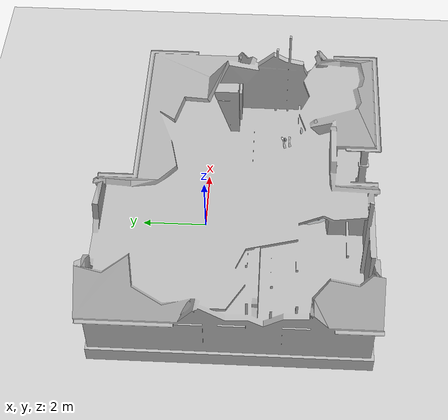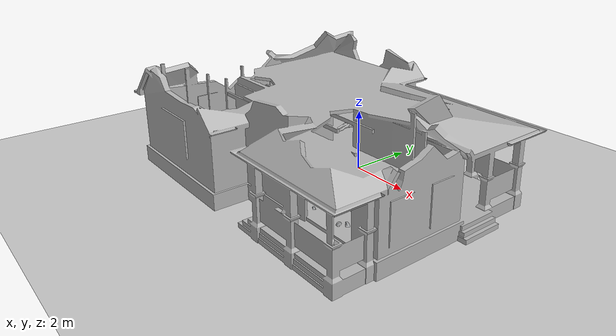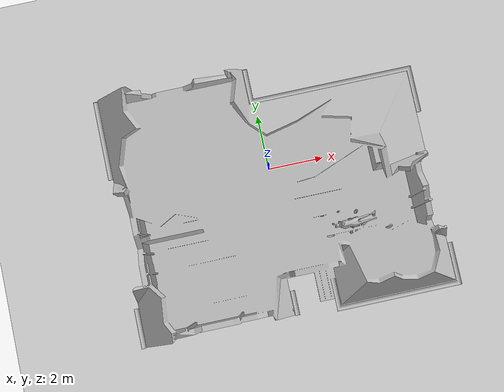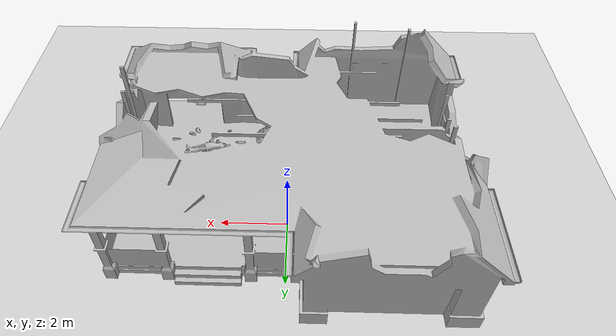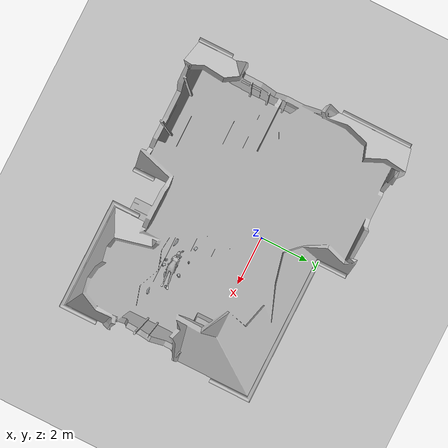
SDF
<sdf version="1.7">
 <world name="default">
  <light name="sun" type="directional">
   <pose>0 0 10 0 -0 0</pose>
   <diffuse>0.8 0.8 0.8 1</diffuse>
   <specular>0.2 0.2 0.2 1</specular>
   <attenuation>
    <range>1000</range>
    <constant>0.9</constant>
    <linear>0.01</linear>
    <quadratic>0.001</quadratic>
   </attenuation>
   <direction>-0.5 0.1 -0.9</direction>
   <spot><inner_angle>0</inner_angle><outer_angle>0</outer_angle><falloff>0</falloff></spot>
  </light>
  <model name="ground_plane">
   <static>1</static>
   <link name="link">
    <collision name="collision">
     <geometry><plane><normal>0 0 1</normal><size>100 100</size></plane></geometry>
     <surface>
      <contact><collide_bitmask>65535</collide_bitmask></contact>
      <friction><ode><mu>100</mu><mu2>50</mu2></ode></friction>
     </surface>
    </collision>
    <visual name="visual">
     <cast_shadows>0</cast_shadows>
     <geometry><plane><normal>0 0 1</normal><size>100 100</size></plane></geometry>
     <material>
      <script><uri>file://media/materials/scripts/gazebo.material</uri><name>Gazebo/Grey</name></script>
     </material>
    </visual>
   </link>
  </model>
  <gravity>0 0 -9.8</gravity>
  <magnetic_field>6e-06 2.3e-05 -4.2e-05</magnetic_field>
  <atmosphere type="adiabatic"/>
  <physics type="ode">
   <max_step_size>0.001</max_step_size>
   <real_time_factor>1</real_time_factor>
   <real_time_update_rate>1000</real_time_update_rate>
  </physics>
  <scene><ambient>0.4 0.4 0.4 1</ambient><background>0.7 0.7 0.7 1</background><shadows>1</shadows></scene>
  <spherical_coordinates>
   <surface_model>EARTH_WGS84</surface_model>
   <latitude_deg>0</latitude_deg>
   <longitude_deg>0</longitude_deg>
   <elevation>0</elevation>
   <heading_deg>0</heading_deg>
  </spherical_coordinates>
  <model name="collapsed_house">
   <static>1</static>
   <link name="link">
    <collision name="collision">
     <geometry>
      <mesh><scale>1 1 1</scale><uri>model://collapsed_house/meshes/collapsed_house.dae</uri></mesh>
     </geometry>
    </collision>
    <visual name="visual">
     <geometry>
      <mesh><scale>1 1 1</scale><uri>model://collapsed_house/meshes/collapsed_house.dae</uri></mesh>
     </geometry>
    </visual>
   </link>
   <pose>0.001134 -1.08578 0 0 -0 0</pose>
  </model>
  <model name="victimWoman">
   <static>1</static>
   <pose>-2.03119 0.562176 0.59278 -0.05194 0 0</pose>
   <link name="defaultModel_0::custom_0">
    <visual name="custom_0_visual">
     <geometry>
      <mesh><uri>model://victimWoman/girl-brunette-dae/girl-brunette.dae</uri><scale>1 1 1</scale></mesh>
     </geometry>
    </visual>
    <collision name="custom_0_collision">
     <geometry>
      <mesh><uri>model://victimWoman/girl-brunette-dae/girl-brunette.dae</uri><scale>1 1 1</scale></mesh>
     </geometry>
    </collision>
   </link>
  </model>
  <light name="user_point_light_0" type="point">
   <pose>-88.8925 63.6066 1 0 -0 0</pose>
   <diffuse>0.5 0.5 0.5 1</diffuse>
   <specular>0.1 0.1 0.1 1</specular>
   <attenuation>
    <range>20</range>
    <constant>0.5</constant>
    <linear>0.01</linear>
    <quadratic>0.001</quadratic>
   </attenuation>
   <cast_shadows>0</cast_shadows>
   <direction>0 0 -1</direction>
  </light>
  <model name="debris_3_2">
   <link name="link_6">
    <inertial>
     <mass>1</mass>
     <inertia>
      <ixx>0.166667</ixx>
      <ixy>0</ixy>
      <ixz>0</ixz>
      <iyy>0.166667</iyy>
      <iyz>0</iyz>
      <izz>0.166667</izz>
     </inertia>
    </inertial>
    <visual name="visual">
     <geometry>
      <mesh><uri>model://debris_3_2/meshes/debris_3_2.dae</uri><scale>0.156304 0.156304 0.156304</scale></mesh>
     </geometry>
     <material>
      <script>
       <uri>model://debris_3_2/materials/scripts</uri>
       <uri>model://debris_3_2/materials/textures</uri>
       <name>debris_3</name>
      </script>
     </material>
    </visual>
    <collision name="collision">
     <geometry>
      <mesh><uri>model://debris_3_2/meshes/debris_3_2.dae</uri><scale>0.156304 0.156304 0.156304</scale></mesh>
     </geometry>
    </collision>
   </link>
   <static>1</static>
   <pose>-0.783784 -1.08201 0.561193 0 -0 0</pose>
  </model>
  <model name="debris_2_2_clone">
   <link name="link_4">
    <inertial>
     <mass>1</mass>
     <inertia>
      <ixx>0.166667</ixx>
      <ixy>0</ixy>
      <ixz>0</ixz>
      <iyy>0.166667</iyy>
      <iyz>0</iyz>
      <izz>0.166667</izz>
     </inertia>
    </inertial>
    <visual name="visual">
     <geometry>
      <mesh><uri>model://debris_2_2/meshes/debris_2_2.dae</uri><scale>0.469505 0.469505 0.469505</scale></mesh>
     </geometry>
     <material>
      <script>
       <uri>model://debris_2_2/materials/scripts</uri>
       <uri>model://debris_2_2/materials/textures</uri>
       <name>debris_2</name>
      </script>
     </material>
    </visual>
    <collision name="collision">
     <geometry>
      <mesh><uri>model://debris_2_2/meshes/debris_2_2.dae</uri><scale>0.469505 0.469505 0.469505</scale></mesh>
     </geometry>
    </collision>
   </link>
   <static>1</static>
   <pose>0.664582 -3.15636 0.543063 0 -0 0</pose>
  </model>
  <model name="victimWoman_0">
   <static>1</static>
   <pose>3.36391 -2.51179 0.554193 0.036653 0.043389 1.57236</pose>
   <link name="defaultModel_0::custom_0">
    <visual name="custom_0_visual">
     <geometry>
      <mesh><uri>model://victimWoman/girl-brunette-dae/girl-brunette.dae</uri><scale>1 1 1</scale></mesh>
     </geometry>
    </visual>
    <collision name="custom_0_collision">
     <geometry>
      <mesh><uri>model://victimWoman/girl-brunette-dae/girl-brunette.dae</uri><scale>1 1 1</scale></mesh>
     </geometry>
    </collision>
   </link>
  </model>
  <model name="debris_2_1">
   <link name="link_3">
    <inertial>
     <mass>1</mass>
     <inertia>
      <ixx>0.166667</ixx>
      <ixy>0</ixy>
      <ixz>0</ixz>
      <iyy>0.166667</iyy>
      <iyz>0</iyz>
      <izz>0.166667</izz>
     </inertia>
    </inertial>
    <visual name="visual">
     <geometry><mesh><uri>model://debris_2_1/meshes/debris_2_1.dae</uri><scale>1 1 1</scale></mesh></geometry>
     <material>
      <script>
       <uri>model://debris_2_1/materials/scripts</uri>
       <uri>model://debris_2_1/materials/textures</uri>
       <name>debris_2</name>
      </script>
     </material>
    </visual>
    <collision name="collision">
     <geometry><mesh><uri>model://debris_2_1/meshes/debris_2_1.dae</uri><scale>1 1 1</scale></mesh></geometry>
    </collision>
   </link>
   <static>1</static>
   <pose>2.52037 -2.878 0.507742 0 0 -1.60877</pose>
  </model>
  <light name="user_point_light_2" type="point">
   <pose>-2.99372 1.20736 1 0 -0 0</pose>
   <diffuse>0.5 0.5 0.5 1</diffuse>
   <specular>0.1 0.1 0.1 1</specular>
   <attenuation>
    <range>20</range>
    <constant>0.5</constant>
    <linear>0.01</linear>
    <quadratic>0.001</quadratic>
   </attenuation>
   <cast_shadows>0</cast_shadows>
   <direction>0 0 -1</direction>
  </light>
  <light name="user_point_light_1" type="point">
   <pose>2.22964 -2.48566 1 0 -0 0</pose>
   <diffuse>0.5 0.5 0.5 1</diffuse>
   <specular>0.1 0.1 0.1 1</specular>
   <attenuation>
    <range>20</range>
    <constant>0.5</constant>
    <linear>0.01</linear>
    <quadratic>0.001</quadratic>
   </attenuation>
   <cast_shadows>0</cast_shadows>
   <direction>0 0 -1</direction>
  </light>
 </world>
</sdf>
